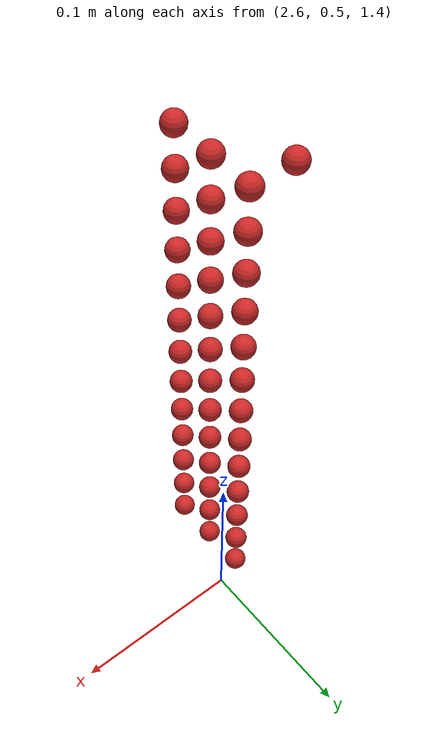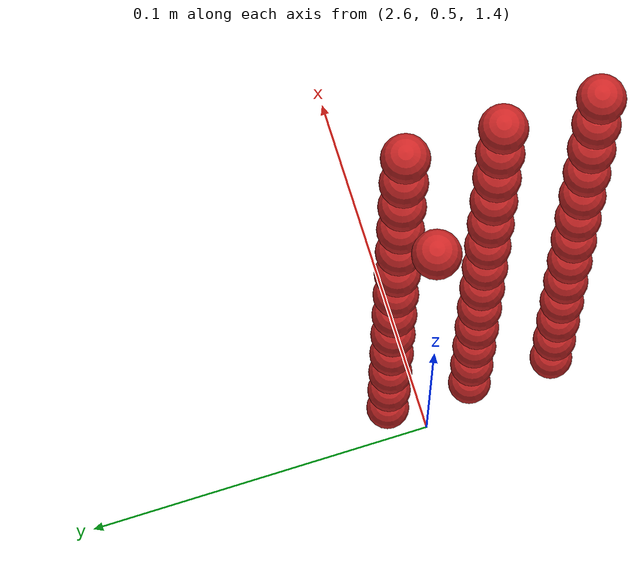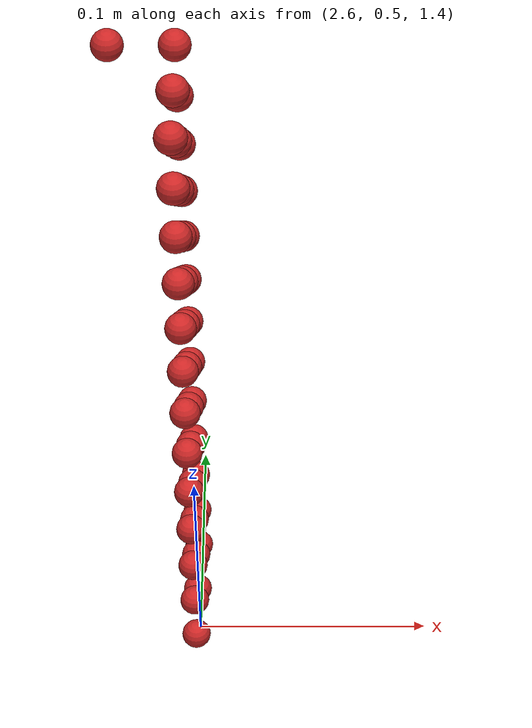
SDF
<sdf version="1.4">
 <world name="default">
  <model name="ground_plane">
   <static>1</static>
   <link name="link">
    <collision name="collision">
     <geometry><plane><normal>0 0 1</normal><size>100 100</size></plane></geometry>
     <surface><friction><ode><mu>100</mu><mu2>50</mu2></ode></friction></surface>
    </collision>
    <visual name="visual">
     <cast_shadows>0</cast_shadows>
     <geometry><plane><normal>0 0 1</normal><size>100 100</size></plane></geometry>
     <material>
      <script><uri>file://media/materials/scripts/gazebo.material</uri><name>Gazebo/Grey</name></script>
     </material>
    </visual>
    <velocity_decay><linear>0</linear><angular>0</angular></velocity_decay>
   </link>
  </model>
  <model name="sphere2">
   <pose>1.300140 0.232149 0.722288 0 0 0</pose>
   <link name="link">
    <pose>1.300140 0.232149 0.722288 0 0 0</pose>
    <inertial>
     <mass>0.001</mass>
     <inertia>
      <ixx>0.004</ixx>
      <ixy>0.000000</ixy>
      <ixz>0.000000</ixz>
      <iyy>0.004</iyy>
      <iyz>0.000000</iyz>
      <izz>0.004</izz>
     </inertia>
    </inertial>
    <collision name="collision">
     <surface>
      <contact><ode><kp>10000000000.000000</kp><kd>1</kd></ode></contact>
      <friction><ode><mu>0.01</mu><mu2>0.01</mu2></ode></friction>
     </surface>
     <geometry><sphere><radius>0.006</radius></sphere></geometry>
    </collision>
    <visual name="visual">
     <geometry><sphere><radius>0.006</radius></sphere></geometry>
     <material>
      <script><uri>file://media/materials/scripts/gazebo.material</uri><name>Gazebo/Red</name></script>
     </material>
    </visual>
   </link>
  </model>
  <model name="sphere5">
   <pose>1.300140 0.244149 0.722288 0 0 0</pose>
   <link name="link">
    <pose>1.300140 0.244149 0.722288 0 0 0</pose>
    <inertial>
     <mass>0.001</mass>
     <inertia>
      <ixx>0.004</ixx>
      <ixy>0.000000</ixy>
      <ixz>0.000000</ixz>
      <iyy>0.004</iyy>
      <iyz>0.000000</iyz>
      <izz>0.004</izz>
     </inertia>
    </inertial>
    <collision name="collision">
     <surface>
      <contact><ode><kp>10000000000.000000</kp><kd>1</kd></ode></contact>
      <friction><ode><mu>0.01</mu><mu2>0.01</mu2></ode></friction>
     </surface>
     <geometry><sphere><radius>0.006</radius></sphere></geometry>
    </collision>
    <visual name="visual">
     <geometry><sphere><radius>0.006</radius></sphere></geometry>
     <material>
      <script><uri>file://media/materials/scripts/gazebo.material</uri><name>Gazebo/Red</name></script>
     </material>
    </visual>
   </link>
  </model>
  <model name="sphere8">
   <pose>1.300140 0.256149 0.722288 0 0 0</pose>
   <link name="link">
    <pose>1.300140 0.256149 0.722288 0 0 0</pose>
    <inertial>
     <mass>0.001</mass>
     <inertia>
      <ixx>0.004</ixx>
      <ixy>0.000000</ixy>
      <ixz>0.000000</ixz>
      <iyy>0.004</iyy>
      <iyz>0.000000</iyz>
      <izz>0.004</izz>
     </inertia>
    </inertial>
    <collision name="collision">
     <surface>
      <contact><ode><kp>10000000000.000000</kp><kd>1</kd></ode></contact>
      <friction><ode><mu>0.01</mu><mu2>0.01</mu2></ode></friction>
     </surface>
     <geometry><sphere><radius>0.006</radius></sphere></geometry>
    </collision>
    <visual name="visual">
     <geometry><sphere><radius>0.006</radius></sphere></geometry>
     <material>
      <script><uri>file://media/materials/scripts/gazebo.material</uri><name>Gazebo/Red</name></script>
     </material>
    </visual>
   </link>
  </model>
  <model name="sphere11">
   <pose>1.300140 0.232149 0.734288 0 0 0</pose>
   <link name="link">
    <pose>1.300140 0.232149 0.734288 0 0 0</pose>
    <inertial>
     <mass>0.001</mass>
     <inertia>
      <ixx>0.004</ixx>
      <ixy>0.000000</ixy>
      <ixz>0.000000</ixz>
      <iyy>0.004</iyy>
      <iyz>0.000000</iyz>
      <izz>0.004</izz>
     </inertia>
    </inertial>
    <collision name="collision">
     <surface>
      <contact><ode><kp>10000000000.000000</kp><kd>1</kd></ode></contact>
      <friction><ode><mu>0.01</mu><mu2>0.01</mu2></ode></friction>
     </surface>
     <geometry><sphere><radius>0.006</radius></sphere></geometry>
    </collision>
    <visual name="visual">
     <geometry><sphere><radius>0.006</radius></sphere></geometry>
     <material>
      <script><uri>file://media/materials/scripts/gazebo.material</uri><name>Gazebo/Red</name></script>
     </material>
    </visual>
   </link>
  </model>
  <model name="sphere14">
   <pose>1.300140 0.244149 0.734288 0 0 0</pose>
   <link name="link">
    <pose>1.300140 0.244149 0.734288 0 0 0</pose>
    <inertial>
     <mass>0.001</mass>
     <inertia>
      <ixx>0.004</ixx>
      <ixy>0.000000</ixy>
      <ixz>0.000000</ixz>
      <iyy>0.004</iyy>
      <iyz>0.000000</iyz>
      <izz>0.004</izz>
     </inertia>
    </inertial>
    <collision name="collision">
     <surface>
      <contact><ode><kp>10000000000.000000</kp><kd>1</kd></ode></contact>
      <friction><ode><mu>0.01</mu><mu2>0.01</mu2></ode></friction>
     </surface>
     <geometry><sphere><radius>0.006</radius></sphere></geometry>
    </collision>
    <visual name="visual">
     <geometry><sphere><radius>0.006</radius></sphere></geometry>
     <material>
      <script><uri>file://media/materials/scripts/gazebo.material</uri><name>Gazebo/Red</name></script>
     </material>
    </visual>
   </link>
  </model>
  <model name="sphere17">
   <pose>1.300140 0.256149 0.734288 0 0 0</pose>
   <link name="link">
    <pose>1.300140 0.256149 0.734288 0 0 0</pose>
    <inertial>
     <mass>0.001</mass>
     <inertia>
      <ixx>0.004</ixx>
      <ixy>0.000000</ixy>
      <ixz>0.000000</ixz>
      <iyy>0.004</iyy>
      <iyz>0.000000</iyz>
      <izz>0.004</izz>
     </inertia>
    </inertial>
    <collision name="collision">
     <surface>
      <contact><ode><kp>10000000000.000000</kp><kd>1</kd></ode></contact>
      <friction><ode><mu>0.01</mu><mu2>0.01</mu2></ode></friction>
     </surface>
     <geometry><sphere><radius>0.006</radius></sphere></geometry>
    </collision>
    <visual name="visual">
     <geometry><sphere><radius>0.006</radius></sphere></geometry>
     <material>
      <script><uri>file://media/materials/scripts/gazebo.material</uri><name>Gazebo/Red</name></script>
     </material>
    </visual>
   </link>
  </model>
  <model name="sphere20">
   <pose>1.300140 0.232149 0.746288 0 0 0</pose>
   <link name="link">
    <pose>1.300140 0.232149 0.746288 0 0 0</pose>
    <inertial>
     <mass>0.001</mass>
     <inertia>
      <ixx>0.004</ixx>
      <ixy>0.000000</ixy>
      <ixz>0.000000</ixz>
      <iyy>0.004</iyy>
      <iyz>0.000000</iyz>
      <izz>0.004</izz>
     </inertia>
    </inertial>
    <collision name="collision">
     <surface>
      <contact><ode><kp>10000000000.000000</kp><kd>1</kd></ode></contact>
      <friction><ode><mu>0.01</mu><mu2>0.01</mu2></ode></friction>
     </surface>
     <geometry><sphere><radius>0.006</radius></sphere></geometry>
    </collision>
    <visual name="visual">
     <geometry><sphere><radius>0.006</radius></sphere></geometry>
     <material>
      <script><uri>file://media/materials/scripts/gazebo.material</uri><name>Gazebo/Red</name></script>
     </material>
    </visual>
   </link>
  </model>
  <model name="sphere23">
   <pose>1.300140 0.244149 0.746288 0 0 0</pose>
   <link name="link">
    <pose>1.300140 0.244149 0.746288 0 0 0</pose>
    <inertial>
     <mass>0.001</mass>
     <inertia>
      <ixx>0.004</ixx>
      <ixy>0.000000</ixy>
      <ixz>0.000000</ixz>
      <iyy>0.004</iyy>
      <iyz>0.000000</iyz>
      <izz>0.004</izz>
     </inertia>
    </inertial>
    <collision name="collision">
     <surface>
      <contact><ode><kp>10000000000.000000</kp><kd>1</kd></ode></contact>
      <friction><ode><mu>0.01</mu><mu2>0.01</mu2></ode></friction>
     </surface>
     <geometry><sphere><radius>0.006</radius></sphere></geometry>
    </collision>
    <visual name="visual">
     <geometry><sphere><radius>0.006</radius></sphere></geometry>
     <material>
      <script><uri>file://media/materials/scripts/gazebo.material</uri><name>Gazebo/Red</name></script>
     </material>
    </visual>
   </link>
  </model>
  <model name="sphere26">
   <pose>1.300140 0.256149 0.746288 0 0 0</pose>
   <link name="link">
    <pose>1.300140 0.256149 0.746288 0 0 0</pose>
    <inertial>
     <mass>0.001</mass>
     <inertia>
      <ixx>0.004</ixx>
      <ixy>0.000000</ixy>
      <ixz>0.000000</ixz>
      <iyy>0.004</iyy>
      <iyz>0.000000</iyz>
      <izz>0.004</izz>
     </inertia>
    </inertial>
    <collision name="collision">
     <surface>
      <contact><ode><kp>10000000000.000000</kp><kd>1</kd></ode></contact>
      <friction><ode><mu>0.01</mu><mu2>0.01</mu2></ode></friction>
     </surface>
     <geometry><sphere><radius>0.006</radius></sphere></geometry>
    </collision>
    <visual name="visual">
     <geometry><sphere><radius>0.006</radius></sphere></geometry>
     <material>
      <script><uri>file://media/materials/scripts/gazebo.material</uri><name>Gazebo/Red</name></script>
     </material>
    </visual>
   </link>
  </model>
  <model name="sphere29">
   <pose>1.300140 0.232149 0.758288 0 0 0</pose>
   <link name="link">
    <pose>1.300140 0.232149 0.758288 0 0 0</pose>
    <inertial>
     <mass>0.001</mass>
     <inertia>
      <ixx>0.004</ixx>
      <ixy>0.000000</ixy>
      <ixz>0.000000</ixz>
      <iyy>0.004</iyy>
      <iyz>0.000000</iyz>
      <izz>0.004</izz>
     </inertia>
    </inertial>
    <collision name="collision">
     <surface>
      <contact><ode><kp>10000000000.000000</kp><kd>1</kd></ode></contact>
      <friction><ode><mu>0.01</mu><mu2>0.01</mu2></ode></friction>
     </surface>
     <geometry><sphere><radius>0.006</radius></sphere></geometry>
    </collision>
    <visual name="visual">
     <geometry><sphere><radius>0.006</radius></sphere></geometry>
     <material>
      <script><uri>file://media/materials/scripts/gazebo.material</uri><name>Gazebo/Red</name></script>
     </material>
    </visual>
   </link>
  </model>
  <model name="sphere32">
   <pose>1.300140 0.244149 0.758288 0 0 0</pose>
   <link name="link">
    <pose>1.300140 0.244149 0.758288 0 0 0</pose>
    <inertial>
     <mass>0.001</mass>
     <inertia>
      <ixx>0.004</ixx>
      <ixy>0.000000</ixy>
      <ixz>0.000000</ixz>
      <iyy>0.004</iyy>
      <iyz>0.000000</iyz>
      <izz>0.004</izz>
     </inertia>
    </inertial>
    <collision name="collision">
     <surface>
      <contact><ode><kp>10000000000.000000</kp><kd>1</kd></ode></contact>
      <friction><ode><mu>0.01</mu><mu2>0.01</mu2></ode></friction>
     </surface>
     <geometry><sphere><radius>0.006</radius></sphere></geometry>
    </collision>
    <visual name="visual">
     <geometry><sphere><radius>0.006</radius></sphere></geometry>
     <material>
      <script><uri>file://media/materials/scripts/gazebo.material</uri><name>Gazebo/Red</name></script>
     </material>
    </visual>
   </link>
  </model>
  <model name="sphere35">
   <pose>1.300140 0.256149 0.758288 0 0 0</pose>
   <link name="link">
    <pose>1.300140 0.256149 0.758288 0 0 0</pose>
    <inertial>
     <mass>0.001</mass>
     <inertia>
      <ixx>0.004</ixx>
      <ixy>0.000000</ixy>
      <ixz>0.000000</ixz>
      <iyy>0.004</iyy>
      <iyz>0.000000</iyz>
      <izz>0.004</izz>
     </inertia>
    </inertial>
    <collision name="collision">
     <surface>
      <contact><ode><kp>10000000000.000000</kp><kd>1</kd></ode></contact>
      <friction><ode><mu>0.01</mu><mu2>0.01</mu2></ode></friction>
     </surface>
     <geometry><sphere><radius>0.006</radius></sphere></geometry>
    </collision>
    <visual name="visual">
     <geometry><sphere><radius>0.006</radius></sphere></geometry>
     <material>
      <script><uri>file://media/materials/scripts/gazebo.material</uri><name>Gazebo/Red</name></script>
     </material>
    </visual>
   </link>
  </model>
  <model name="sphere38">
   <pose>1.300140 0.232149 0.770288 0 0 0</pose>
   <link name="link">
    <pose>1.300140 0.232149 0.770288 0 0 0</pose>
    <inertial>
     <mass>0.001</mass>
     <inertia>
      <ixx>0.004</ixx>
      <ixy>0.000000</ixy>
      <ixz>0.000000</ixz>
      <iyy>0.004</iyy>
      <iyz>0.000000</iyz>
      <izz>0.004</izz>
     </inertia>
    </inertial>
    <collision name="collision">
     <surface>
      <contact><ode><kp>10000000000.000000</kp><kd>1</kd></ode></contact>
      <friction><ode><mu>0.01</mu><mu2>0.01</mu2></ode></friction>
     </surface>
     <geometry><sphere><radius>0.006</radius></sphere></geometry>
    </collision>
    <visual name="visual">
     <geometry><sphere><radius>0.006</radius></sphere></geometry>
     <material>
      <script><uri>file://media/materials/scripts/gazebo.material</uri><name>Gazebo/Red</name></script>
     </material>
    </visual>
   </link>
  </model>
  <model name="sphere41">
   <pose>1.300140 0.244149 0.770288 0 0 0</pose>
   <link name="link">
    <pose>1.300140 0.244149 0.770288 0 0 0</pose>
    <inertial>
     <mass>0.001</mass>
     <inertia>
      <ixx>0.004</ixx>
      <ixy>0.000000</ixy>
      <ixz>0.000000</ixz>
      <iyy>0.004</iyy>
      <iyz>0.000000</iyz>
      <izz>0.004</izz>
     </inertia>
    </inertial>
    <collision name="collision">
     <surface>
      <contact><ode><kp>10000000000.000000</kp><kd>1</kd></ode></contact>
      <friction><ode><mu>0.01</mu><mu2>0.01</mu2></ode></friction>
     </surface>
     <geometry><sphere><radius>0.006</radius></sphere></geometry>
    </collision>
    <visual name="visual">
     <geometry><sphere><radius>0.006</radius></sphere></geometry>
     <material>
      <script><uri>file://media/materials/scripts/gazebo.material</uri><name>Gazebo/Red</name></script>
     </material>
    </visual>
   </link>
  </model>
  <model name="sphere44">
   <pose>1.300140 0.256149 0.770288 0 0 0</pose>
   <link name="link">
    <pose>1.300140 0.256149 0.770288 0 0 0</pose>
    <inertial>
     <mass>0.001</mass>
     <inertia>
      <ixx>0.004</ixx>
      <ixy>0.000000</ixy>
      <ixz>0.000000</ixz>
      <iyy>0.004</iyy>
      <iyz>0.000000</iyz>
      <izz>0.004</izz>
     </inertia>
    </inertial>
    <collision name="collision">
     <surface>
      <contact><ode><kp>10000000000.000000</kp><kd>1</kd></ode></contact>
      <friction><ode><mu>0.01</mu><mu2>0.01</mu2></ode></friction>
     </surface>
     <geometry><sphere><radius>0.006</radius></sphere></geometry>
    </collision>
    <visual name="visual">
     <geometry><sphere><radius>0.006</radius></sphere></geometry>
     <material>
      <script><uri>file://media/materials/scripts/gazebo.material</uri><name>Gazebo/Red</name></script>
     </material>
    </visual>
   </link>
  </model>
  <model name="sphere47">
   <pose>1.300140 0.232149 0.782288 0 0 0</pose>
   <link name="link">
    <pose>1.300140 0.232149 0.782288 0 0 0</pose>
    <inertial>
     <mass>0.001</mass>
     <inertia>
      <ixx>0.004</ixx>
      <ixy>0.000000</ixy>
      <ixz>0.000000</ixz>
      <iyy>0.004</iyy>
      <iyz>0.000000</iyz>
      <izz>0.004</izz>
     </inertia>
    </inertial>
    <collision name="collision">
     <surface>
      <contact><ode><kp>10000000000.000000</kp><kd>1</kd></ode></contact>
      <friction><ode><mu>0.01</mu><mu2>0.01</mu2></ode></friction>
     </surface>
     <geometry><sphere><radius>0.006</radius></sphere></geometry>
    </collision>
    <visual name="visual">
     <geometry><sphere><radius>0.006</radius></sphere></geometry>
     <material>
      <script><uri>file://media/materials/scripts/gazebo.material</uri><name>Gazebo/Red</name></script>
     </material>
    </visual>
   </link>
  </model>
  <model name="sphere50">
   <pose>1.300140 0.244149 0.782288 0 0 0</pose>
   <link name="link">
    <pose>1.300140 0.244149 0.782288 0 0 0</pose>
    <inertial>
     <mass>0.001</mass>
     <inertia>
      <ixx>0.004</ixx>
      <ixy>0.000000</ixy>
      <ixz>0.000000</ixz>
      <iyy>0.004</iyy>
      <iyz>0.000000</iyz>
      <izz>0.004</izz>
     </inertia>
    </inertial>
    <collision name="collision">
     <surface>
      <contact><ode><kp>10000000000.000000</kp><kd>1</kd></ode></contact>
      <friction><ode><mu>0.01</mu><mu2>0.01</mu2></ode></friction>
     </surface>
     <geometry><sphere><radius>0.006</radius></sphere></geometry>
    </collision>
    <visual name="visual">
     <geometry><sphere><radius>0.006</radius></sphere></geometry>
     <material>
      <script><uri>file://media/materials/scripts/gazebo.material</uri><name>Gazebo/Red</name></script>
     </material>
    </visual>
   </link>
  </model>
  <model name="sphere53">
   <pose>1.300140 0.256149 0.782288 0 0 0</pose>
   <link name="link">
    <pose>1.300140 0.256149 0.782288 0 0 0</pose>
    <inertial>
     <mass>0.001</mass>
     <inertia>
      <ixx>0.004</ixx>
      <ixy>0.000000</ixy>
      <ixz>0.000000</ixz>
      <iyy>0.004</iyy>
      <iyz>0.000000</iyz>
      <izz>0.004</izz>
     </inertia>
    </inertial>
    <collision name="collision">
     <surface>
      <contact><ode><kp>10000000000.000000</kp><kd>1</kd></ode></contact>
      <friction><ode><mu>0.01</mu><mu2>0.01</mu2></ode></friction>
     </surface>
     <geometry><sphere><radius>0.006</radius></sphere></geometry>
    </collision>
    <visual name="visual">
     <geometry><sphere><radius>0.006</radius></sphere></geometry>
     <material>
      <script><uri>file://media/materials/scripts/gazebo.material</uri><name>Gazebo/Red</name></script>
     </material>
    </visual>
   </link>
  </model>
  <model name="sphere56">
   <pose>1.300140 0.232149 0.794288 0 0 0</pose>
   <link name="link">
    <pose>1.300140 0.232149 0.794288 0 0 0</pose>
    <inertial>
     <mass>0.001</mass>
     <inertia>
      <ixx>0.004</ixx>
      <ixy>0.000000</ixy>
      <ixz>0.000000</ixz>
      <iyy>0.004</iyy>
      <iyz>0.000000</iyz>
      <izz>0.004</izz>
     </inertia>
    </inertial>
    <collision name="collision">
     <surface>
      <contact><ode><kp>10000000000.000000</kp><kd>1</kd></ode></contact>
      <friction><ode><mu>0.01</mu><mu2>0.01</mu2></ode></friction>
     </surface>
     <geometry><sphere><radius>0.006</radius></sphere></geometry>
    </collision>
    <visual name="visual">
     <geometry><sphere><radius>0.006</radius></sphere></geometry>
     <material>
      <script><uri>file://media/materials/scripts/gazebo.material</uri><name>Gazebo/Red</name></script>
     </material>
    </visual>
   </link>
  </model>
  <model name="sphere59">
   <pose>1.300140 0.244149 0.794288 0 0 0</pose>
   <link name="link">
    <pose>1.300140 0.244149 0.794288 0 0 0</pose>
    <inertial>
     <mass>0.001</mass>
     <inertia>
      <ixx>0.004</ixx>
      <ixy>0.000000</ixy>
      <ixz>0.000000</ixz>
      <iyy>0.004</iyy>
      <iyz>0.000000</iyz>
      <izz>0.004</izz>
     </inertia>
    </inertial>
    <collision name="collision">
     <surface>
      <contact><ode><kp>10000000000.000000</kp><kd>1</kd></ode></contact>
      <friction><ode><mu>0.01</mu><mu2>0.01</mu2></ode></friction>
     </surface>
     <geometry><sphere><radius>0.006</radius></sphere></geometry>
    </collision>
    <visual name="visual">
     <geometry><sphere><radius>0.006</radius></sphere></geometry>
     <material>
      <script><uri>file://media/materials/scripts/gazebo.material</uri><name>Gazebo/Red</name></script>
     </material>
    </visual>
   </link>
  </model>
  <model name="sphere62">
   <pose>1.300140 0.256149 0.794288 0 0 0</pose>
   <link name="link">
    <pose>1.300140 0.256149 0.794288 0 0 0</pose>
    <inertial>
     <mass>0.001</mass>
     <inertia>
      <ixx>0.004</ixx>
      <ixy>0.000000</ixy>
      <ixz>0.000000</ixz>
      <iyy>0.004</iyy>
      <iyz>0.000000</iyz>
      <izz>0.004</izz>
     </inertia>
    </inertial>
    <collision name="collision">
     <surface>
      <contact><ode><kp>10000000000.000000</kp><kd>1</kd></ode></contact>
      <friction><ode><mu>0.01</mu><mu2>0.01</mu2></ode></friction>
     </surface>
     <geometry><sphere><radius>0.006</radius></sphere></geometry>
    </collision>
    <visual name="visual">
     <geometry><sphere><radius>0.006</radius></sphere></geometry>
     <material>
      <script><uri>file://media/materials/scripts/gazebo.material</uri><name>Gazebo/Red</name></script>
     </material>
    </visual>
   </link>
  </model>
  <model name="sphere65">
   <pose>1.300140 0.232149 0.806288 0 0 0</pose>
   <link name="link">
    <pose>1.300140 0.232149 0.806288 0 0 0</pose>
    <inertial>
     <mass>0.001</mass>
     <inertia>
      <ixx>0.004</ixx>
      <ixy>0.000000</ixy>
      <ixz>0.000000</ixz>
      <iyy>0.004</iyy>
      <iyz>0.000000</iyz>
      <izz>0.004</izz>
     </inertia>
    </inertial>
    <collision name="collision">
     <surface>
      <contact><ode><kp>10000000000.000000</kp><kd>1</kd></ode></contact>
      <friction><ode><mu>0.01</mu><mu2>0.01</mu2></ode></friction>
     </surface>
     <geometry><sphere><radius>0.006</radius></sphere></geometry>
    </collision>
    <visual name="visual">
     <geometry><sphere><radius>0.006</radius></sphere></geometry>
     <material>
      <script><uri>file://media/materials/scripts/gazebo.material</uri><name>Gazebo/Red</name></script>
     </material>
    </visual>
   </link>
  </model>
  <model name="sphere68">
   <pose>1.300140 0.244149 0.806288 0 0 0</pose>
   <link name="link">
    <pose>1.300140 0.244149 0.806288 0 0 0</pose>
    <inertial>
     <mass>0.001</mass>
     <inertia>
      <ixx>0.004</ixx>
      <ixy>0.000000</ixy>
      <ixz>0.000000</ixz>
      <iyy>0.004</iyy>
      <iyz>0.000000</iyz>
      <izz>0.004</izz>
     </inertia>
    </inertial>
    <collision name="collision">
     <surface>
      <contact><ode><kp>10000000000.000000</kp><kd>1</kd></ode></contact>
      <friction><ode><mu>0.01</mu><mu2>0.01</mu2></ode></friction>
     </surface>
     <geometry><sphere><radius>0.006</radius></sphere></geometry>
    </collision>
    <visual name="visual">
     <geometry><sphere><radius>0.006</radius></sphere></geometry>
     <material>
      <script><uri>file://media/materials/scripts/gazebo.material</uri><name>Gazebo/Red</name></script>
     </material>
    </visual>
   </link>
  </model>
  <model name="sphere71">
   <pose>1.300140 0.256149 0.806288 0 0 0</pose>
   <link name="link">
    <pose>1.300140 0.256149 0.806288 0 0 0</pose>
    <inertial>
     <mass>0.001</mass>
     <inertia>
      <ixx>0.004</ixx>
      <ixy>0.000000</ixy>
      <ixz>0.000000</ixz>
      <iyy>0.004</iyy>
      <iyz>0.000000</iyz>
      <izz>0.004</izz>
     </inertia>
    </inertial>
    <collision name="collision">
     <surface>
      <contact><ode><kp>10000000000.000000</kp><kd>1</kd></ode></contact>
      <friction><ode><mu>0.01</mu><mu2>0.01</mu2></ode></friction>
     </surface>
     <geometry><sphere><radius>0.006</radius></sphere></geometry>
    </collision>
    <visual name="visual">
     <geometry><sphere><radius>0.006</radius></sphere></geometry>
     <material>
      <script><uri>file://media/materials/scripts/gazebo.material</uri><name>Gazebo/Red</name></script>
     </material>
    </visual>
   </link>
  </model>
  <model name="sphere74">
   <pose>1.300140 0.232149 0.818288 0 0 0</pose>
   <link name="link">
    <pose>1.300140 0.232149 0.818288 0 0 0</pose>
    <inertial>
     <mass>0.001</mass>
     <inertia>
      <ixx>0.004</ixx>
      <ixy>0.000000</ixy>
      <ixz>0.000000</ixz>
      <iyy>0.004</iyy>
      <iyz>0.000000</iyz>
      <izz>0.004</izz>
     </inertia>
    </inertial>
    <collision name="collision">
     <surface>
      <contact><ode><kp>10000000000.000000</kp><kd>1</kd></ode></contact>
      <friction><ode><mu>0.01</mu><mu2>0.01</mu2></ode></friction>
     </surface>
     <geometry><sphere><radius>0.006</radius></sphere></geometry>
    </collision>
    <visual name="visual">
     <geometry><sphere><radius>0.006</radius></sphere></geometry>
     <material>
      <script><uri>file://media/materials/scripts/gazebo.material</uri><name>Gazebo/Red</name></script>
     </material>
    </visual>
   </link>
  </model>
  <model name="sphere77">
   <pose>1.300140 0.244149 0.818288 0 0 0</pose>
   <link name="link">
    <pose>1.300140 0.244149 0.818288 0 0 0</pose>
    <inertial>
     <mass>0.001</mass>
     <inertia>
      <ixx>0.004</ixx>
      <ixy>0.000000</ixy>
      <ixz>0.000000</ixz>
      <iyy>0.004</iyy>
      <iyz>0.000000</iyz>
      <izz>0.004</izz>
     </inertia>
    </inertial>
    <collision name="collision">
     <surface>
      <contact><ode><kp>10000000000.000000</kp><kd>1</kd></ode></contact>
      <friction><ode><mu>0.01</mu><mu2>0.01</mu2></ode></friction>
     </surface>
     <geometry><sphere><radius>0.006</radius></sphere></geometry>
    </collision>
    <visual name="visual">
     <geometry><sphere><radius>0.006</radius></sphere></geometry>
     <material>
      <script><uri>file://media/materials/scripts/gazebo.material</uri><name>Gazebo/Red</name></script>
     </material>
    </visual>
   </link>
  </model>
  <model name="sphere80">
   <pose>1.300140 0.256149 0.818288 0 0 0</pose>
   <link name="link">
    <pose>1.300140 0.256149 0.818288 0 0 0</pose>
    <inertial>
     <mass>0.001</mass>
     <inertia>
      <ixx>0.004</ixx>
      <ixy>0.000000</ixy>
      <ixz>0.000000</ixz>
      <iyy>0.004</iyy>
      <iyz>0.000000</iyz>
      <izz>0.004</izz>
     </inertia>
    </inertial>
    <collision name="collision">
     <surface>
      <contact><ode><kp>10000000000.000000</kp><kd>1</kd></ode></contact>
      <friction><ode><mu>0.01</mu><mu2>0.01</mu2></ode></friction>
     </surface>
     <geometry><sphere><radius>0.006</radius></sphere></geometry>
    </collision>
    <visual name="visual">
     <geometry><sphere><radius>0.006</radius></sphere></geometry>
     <material>
      <script><uri>file://media/materials/scripts/gazebo.material</uri><name>Gazebo/Red</name></script>
     </material>
    </visual>
   </link>
  </model>
  <model name="sphere83">
   <pose>1.300140 0.232149 0.830288 0 0 0</pose>
   <link name="link">
    <pose>1.300140 0.232149 0.830288 0 0 0</pose>
    <inertial>
     <mass>0.001</mass>
     <inertia>
      <ixx>0.004</ixx>
      <ixy>0.000000</ixy>
      <ixz>0.000000</ixz>
      <iyy>0.004</iyy>
      <iyz>0.000000</iyz>
      <izz>0.004</izz>
     </inertia>
    </inertial>
    <collision name="collision">
     <surface>
      <contact><ode><kp>10000000000.000000</kp><kd>1</kd></ode></contact>
      <friction><ode><mu>0.01</mu><mu2>0.01</mu2></ode></friction>
     </surface>
     <geometry><sphere><radius>0.006</radius></sphere></geometry>
    </collision>
    <visual name="visual">
     <geometry><sphere><radius>0.006</radius></sphere></geometry>
     <material>
      <script><uri>file://media/materials/scripts/gazebo.material</uri><name>Gazebo/Red</name></script>
     </material>
    </visual>
   </link>
  </model>
  <model name="sphere86">
   <pose>1.300140 0.244149 0.830288 0 0 0</pose>
   <link name="link">
    <pose>1.300140 0.244149 0.830288 0 0 0</pose>
    <inertial>
     <mass>0.001</mass>
     <inertia>
      <ixx>0.004</ixx>
      <ixy>0.000000</ixy>
      <ixz>0.000000</ixz>
      <iyy>0.004</iyy>
      <iyz>0.000000</iyz>
      <izz>0.004</izz>
     </inertia>
    </inertial>
    <collision name="collision">
     <surface>
      <contact><ode><kp>10000000000.000000</kp><kd>1</kd></ode></contact>
      <friction><ode><mu>0.01</mu><mu2>0.01</mu2></ode></friction>
     </surface>
     <geometry><sphere><radius>0.006</radius></sphere></geometry>
    </collision>
    <visual name="visual">
     <geometry><sphere><radius>0.006</radius></sphere></geometry>
     <material>
      <script><uri>file://media/materials/scripts/gazebo.material</uri><name>Gazebo/Red</name></script>
     </material>
    </visual>
   </link>
  </model>
  <model name="sphere89">
   <pose>1.300140 0.256149 0.830288 0 0 0</pose>
   <link name="link">
    <pose>1.300140 0.256149 0.830288 0 0 0</pose>
    <inertial>
     <mass>0.001</mass>
     <inertia>
      <ixx>0.004</ixx>
      <ixy>0.000000</ixy>
      <ixz>0.000000</ixz>
      <iyy>0.004</iyy>
      <iyz>0.000000</iyz>
      <izz>0.004</izz>
     </inertia>
    </inertial>
    <collision name="collision">
     <surface>
      <contact><ode><kp>10000000000.000000</kp><kd>1</kd></ode></contact>
      <friction><ode><mu>0.01</mu><mu2>0.01</mu2></ode></friction>
     </surface>
     <geometry><sphere><radius>0.006</radius></sphere></geometry>
    </collision>
    <visual name="visual">
     <geometry><sphere><radius>0.006</radius></sphere></geometry>
     <material>
      <script><uri>file://media/materials/scripts/gazebo.material</uri><name>Gazebo/Red</name></script>
     </material>
    </visual>
   </link>
  </model>
  <model name="sphere92">
   <pose>1.300140 0.232149 0.842288 0 0 0</pose>
   <link name="link">
    <pose>1.300140 0.232149 0.842288 0 0 0</pose>
    <inertial>
     <mass>0.001</mass>
     <inertia>
      <ixx>0.004</ixx>
      <ixy>0.000000</ixy>
      <ixz>0.000000</ixz>
      <iyy>0.004</iyy>
      <iyz>0.000000</iyz>
      <izz>0.004</izz>
     </inertia>
    </inertial>
    <collision name="collision">
     <surface>
      <contact><ode><kp>10000000000.000000</kp><kd>1</kd></ode></contact>
      <friction><ode><mu>0.01</mu><mu2>0.01</mu2></ode></friction>
     </surface>
     <geometry><sphere><radius>0.006</radius></sphere></geometry>
    </collision>
    <visual name="visual">
     <geometry><sphere><radius>0.006</radius></sphere></geometry>
     <material>
      <script><uri>file://media/materials/scripts/gazebo.material</uri><name>Gazebo/Red</name></script>
     </material>
    </visual>
   </link>
  </model>
  <model name="sphere95">
   <pose>1.300140 0.244149 0.842288 0 0 0</pose>
   <link name="link">
    <pose>1.300140 0.244149 0.842288 0 0 0</pose>
    <inertial>
     <mass>0.001</mass>
     <inertia>
      <ixx>0.004</ixx>
      <ixy>0.000000</ixy>
      <ixz>0.000000</ixz>
      <iyy>0.004</iyy>
      <iyz>0.000000</iyz>
      <izz>0.004</izz>
     </inertia>
    </inertial>
    <collision name="collision">
     <surface>
      <contact><ode><kp>10000000000.000000</kp><kd>1</kd></ode></contact>
      <friction><ode><mu>0.01</mu><mu2>0.01</mu2></ode></friction>
     </surface>
     <geometry><sphere><radius>0.006</radius></sphere></geometry>
    </collision>
    <visual name="visual">
     <geometry><sphere><radius>0.006</radius></sphere></geometry>
     <material>
      <script><uri>file://media/materials/scripts/gazebo.material</uri><name>Gazebo/Red</name></script>
     </material>
    </visual>
   </link>
  </model>
  <model name="sphere98">
   <pose>1.300140 0.256149 0.842288 0 0 0</pose>
   <link name="link">
    <pose>1.300140 0.256149 0.842288 0 0 0</pose>
    <inertial>
     <mass>0.001</mass>
     <inertia>
      <ixx>0.004</ixx>
      <ixy>0.000000</ixy>
      <ixz>0.000000</ixz>
      <iyy>0.004</iyy>
      <iyz>0.000000</iyz>
      <izz>0.004</izz>
     </inertia>
    </inertial>
    <collision name="collision">
     <surface>
      <contact><ode><kp>10000000000.000000</kp><kd>1</kd></ode></contact>
      <friction><ode><mu>0.01</mu><mu2>0.01</mu2></ode></friction>
     </surface>
     <geometry><sphere><radius>0.006</radius></sphere></geometry>
    </collision>
    <visual name="visual">
     <geometry><sphere><radius>0.006</radius></sphere></geometry>
     <material>
      <script><uri>file://media/materials/scripts/gazebo.material</uri><name>Gazebo/Red</name></script>
     </material>
    </visual>
   </link>
  </model>
  <model name="sphere101">
   <pose>1.300140 0.232149 0.854288 0 0 0</pose>
   <link name="link">
    <pose>1.300140 0.232149 0.854288 0 0 0</pose>
    <inertial>
     <mass>0.001</mass>
     <inertia>
      <ixx>0.004</ixx>
      <ixy>0.000000</ixy>
      <ixz>0.000000</ixz>
      <iyy>0.004</iyy>
      <iyz>0.000000</iyz>
      <izz>0.004</izz>
     </inertia>
    </inertial>
    <collision name="collision">
     <surface>
      <contact><ode><kp>10000000000.000000</kp><kd>1</kd></ode></contact>
      <friction><ode><mu>0.01</mu><mu2>0.01</mu2></ode></friction>
     </surface>
     <geometry><sphere><radius>0.006</radius></sphere></geometry>
    </collision>
    <visual name="visual">
     <geometry><sphere><radius>0.006</radius></sphere></geometry>
     <material>
      <script><uri>file://media/materials/scripts/gazebo.material</uri><name>Gazebo/Red</name></script>
     </material>
    </visual>
   </link>
  </model>
  <model name="sphere104">
   <pose>1.300140 0.244149 0.854288 0 0 0</pose>
   <link name="link">
    <pose>1.300140 0.244149 0.854288 0 0 0</pose>
    <inertial>
     <mass>0.001</mass>
     <inertia>
      <ixx>0.004</ixx>
      <ixy>0.000000</ixy>
      <ixz>0.000000</ixz>
      <iyy>0.004</iyy>
      <iyz>0.000000</iyz>
      <izz>0.004</izz>
     </inertia>
    </inertial>
    <collision name="collision">
     <surface>
      <contact><ode><kp>10000000000.000000</kp><kd>1</kd></ode></contact>
      <friction><ode><mu>0.01</mu><mu2>0.01</mu2></ode></friction>
     </surface>
     <geometry><sphere><radius>0.006</radius></sphere></geometry>
    </collision>
    <visual name="visual">
     <geometry><sphere><radius>0.006</radius></sphere></geometry>
     <material>
      <script><uri>file://media/materials/scripts/gazebo.material</uri><name>Gazebo/Red</name></script>
     </material>
    </visual>
   </link>
  </model>
  <model name="sphere107">
   <pose>1.300140 0.256149 0.854288 0 0 0</pose>
   <link name="link">
    <pose>1.300140 0.256149 0.854288 0 0 0</pose>
    <inertial>
     <mass>0.001</mass>
     <inertia>
      <ixx>0.004</ixx>
      <ixy>0.000000</ixy>
      <ixz>0.000000</ixz>
      <iyy>0.004</iyy>
      <iyz>0.000000</iyz>
      <izz>0.004</izz>
     </inertia>
    </inertial>
    <collision name="collision">
     <surface>
      <contact><ode><kp>10000000000.000000</kp><kd>1</kd></ode></contact>
      <friction><ode><mu>0.01</mu><mu2>0.01</mu2></ode></friction>
     </surface>
     <geometry><sphere><radius>0.006</radius></sphere></geometry>
    </collision>
    <visual name="visual">
     <geometry><sphere><radius>0.006</radius></sphere></geometry>
     <material>
      <script><uri>file://media/materials/scripts/gazebo.material</uri><name>Gazebo/Red</name></script>
     </material>
    </visual>
   </link>
  </model>
  <model name="sphere110">
   <pose>1.300140 0.232149 0.866288 0 0 0</pose>
   <link name="link">
    <pose>1.300140 0.232149 0.866288 0 0 0</pose>
    <inertial>
     <mass>0.001</mass>
     <inertia>
      <ixx>0.004</ixx>
      <ixy>0.000000</ixy>
      <ixz>0.000000</ixz>
      <iyy>0.004</iyy>
      <iyz>0.000000</iyz>
      <izz>0.004</izz>
     </inertia>
    </inertial>
    <collision name="collision">
     <surface>
      <contact><ode><kp>10000000000.000000</kp><kd>1</kd></ode></contact>
      <friction><ode><mu>0.01</mu><mu2>0.01</mu2></ode></friction>
     </surface>
     <geometry><sphere><radius>0.006</radius></sphere></geometry>
    </collision>
    <visual name="visual">
     <geometry><sphere><radius>0.006</radius></sphere></geometry>
     <material>
      <script><uri>file://media/materials/scripts/gazebo.material</uri><name>Gazebo/Red</name></script>
     </material>
    </visual>
   </link>
  </model>
  <model name="sphere113">
   <pose>1.300140 0.244149 0.866288 0 0 0</pose>
   <link name="link">
    <pose>1.300140 0.244149 0.866288 0 0 0</pose>
    <inertial>
     <mass>0.001</mass>
     <inertia>
      <ixx>0.004</ixx>
      <ixy>0.000000</ixy>
      <ixz>0.000000</ixz>
      <iyy>0.004</iyy>
      <iyz>0.000000</iyz>
      <izz>0.004</izz>
     </inertia>
    </inertial>
    <collision name="collision">
     <surface>
      <contact><ode><kp>10000000000.000000</kp><kd>1</kd></ode></contact>
      <friction><ode><mu>0.01</mu><mu2>0.01</mu2></ode></friction>
     </surface>
     <geometry><sphere><radius>0.006</radius></sphere></geometry>
    </collision>
    <visual name="visual">
     <geometry><sphere><radius>0.006</radius></sphere></geometry>
     <material>
      <script><uri>file://media/materials/scripts/gazebo.material</uri><name>Gazebo/Red</name></script>
     </material>
    </visual>
   </link>
  </model>
  <model name="sphere115">
   <pose>1.288140 0.256149 0.866288 0 0 0</pose>
   <link name="link">
    <pose>1.288140 0.256149 0.866288 0 0 0</pose>
    <inertial>
     <mass>0.001</mass>
     <inertia>
      <ixx>0.004</ixx>
      <ixy>0.000000</ixy>
      <ixz>0.000000</ixz>
      <iyy>0.004</iyy>
      <iyz>0.000000</iyz>
      <izz>0.004</izz>
     </inertia>
    </inertial>
    <collision name="collision">
     <surface>
      <contact><ode><kp>10000000000.000000</kp><kd>1</kd></ode></contact>
      <friction><ode><mu>0.01</mu><mu2>0.01</mu2></ode></friction>
     </surface>
     <geometry><sphere><radius>0.006</radius></sphere></geometry>
    </collision>
    <visual name="visual">
     <geometry><sphere><radius>0.006</radius></sphere></geometry>
     <material>
      <script><uri>file://media/materials/scripts/gazebo.material</uri><name>Gazebo/Red</name></script>
     </material>
    </visual>
   </link>
  </model>
  <model name="sphere116">
   <pose>1.300140 0.256149 0.866288 0 0 0</pose>
   <link name="link">
    <pose>1.300140 0.256149 0.866288 0 0 0</pose>
    <inertial>
     <mass>0.001</mass>
     <inertia>
      <ixx>0.004</ixx>
      <ixy>0.000000</ixy>
      <ixz>0.000000</ixz>
      <iyy>0.004</iyy>
      <iyz>0.000000</iyz>
      <izz>0.004</izz>
     </inertia>
    </inertial>
    <collision name="collision">
     <surface>
      <contact><ode><kp>10000000000.000000</kp><kd>1</kd></ode></contact>
      <friction><ode><mu>0.01</mu><mu2>0.01</mu2></ode></friction>
     </surface>
     <geometry><sphere><radius>0.006</radius></sphere></geometry>
    </collision>
    <visual name="visual">
     <geometry><sphere><radius>0.006</radius></sphere></geometry>
     <material>
      <script><uri>file://media/materials/scripts/gazebo.material</uri><name>Gazebo/Red</name></script>
     </material>
    </visual>
   </link>
  </model>
 </world>
</sdf>
